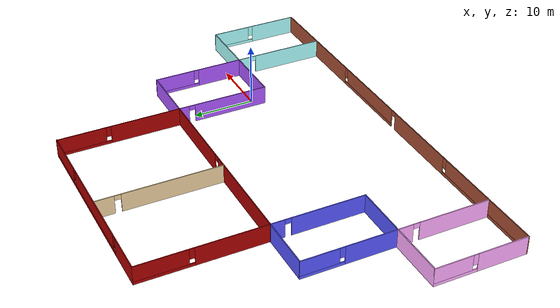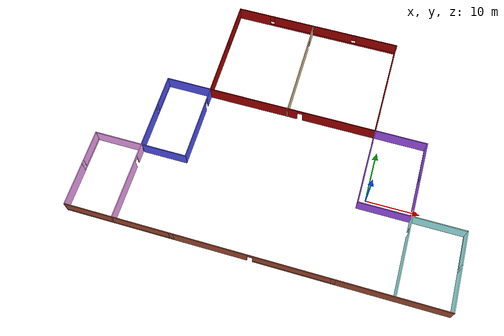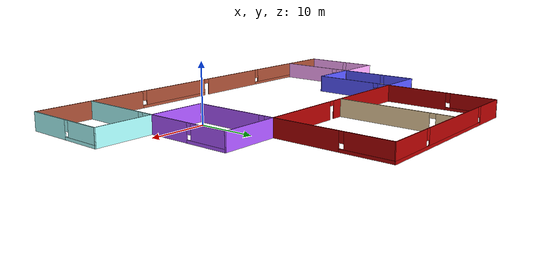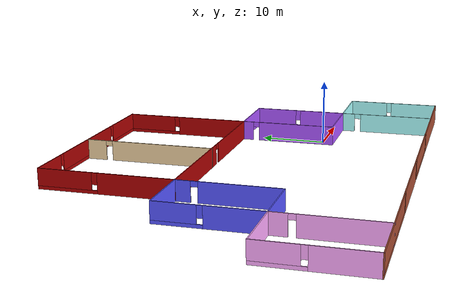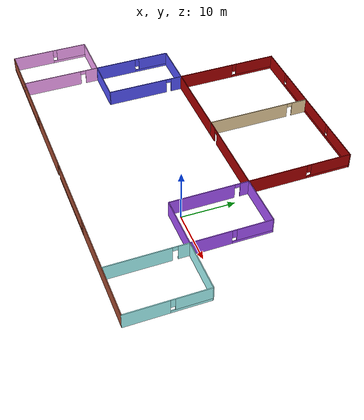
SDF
<?xml version='1.0'?>
<sdf version='1.6'>
  <model name='myworld'>
    <pose frame=''>-16.567 8.19 0 0 -0 0</pose>
    <link name='Wall_13'>
      <pose frame=''>1e-06 -24.775 0 0 -0 3.14159</pose>
      <visual name='Wall_13_Visual_0'>
        <pose frame=''>-24.8847 0 1.5 0 -0 0</pose>
        <geometry>
          <box>
            <size>20.2306 0.15 3</size>
          </box>
        </geometry>
        <material>
          <script>
            <uri>file://media/materials/scripts/gazebo.material</uri>
            <name>Gazebo/Bricks</name>
          </script>
          <ambient>1 1 1 1</ambient>
        </material>
        <meta>
          <layer>0</layer>
        </meta>
      </visual>
      <collision name='Wall_13_Collision_0'>
        <geometry>
          <box>
            <size>20.2306 0.15 3</size>
          </box>
        </geometry>
        <pose frame=''>-24.8847 0 1.5 0 -0 0</pose>
      </collision>
      <visual name='Wall_13_Visual_1'>
        <pose frame=''>7.72446 0 1.5 0 -0 0</pose>
        <geometry>
          <box>
            <size>13.4735 0.15 3</size>
          </box>
        </geometry>
        <material>
          <script>
            <uri>file://media/materials/scripts/gazebo.material</uri>
            <name>Gazebo/Bricks</name>
          </script>
          <ambient>1 1 1 1</ambient>
        </material>
        <meta>
          <layer>0</layer>
        </meta>
      </visual>
      <collision name='Wall_13_Collision_1'>
        <geometry>
          <box>
            <size>13.4735 0.15 3</size>
          </box>
        </geometry>
        <pose frame=''>7.72446 0 1.5 0 -0 0</pose>
      </collision>
      <visual name='Wall_13_Visual_2'>
        <pose frame=''>-7.39085 0 0.25 0 -0 0</pose>
        <geometry>
          <box>
            <size>14.7571 0.15 0.5</size>
          </box>
        </geometry>
        <material>
          <script>
            <uri>file://media/materials/scripts/gazebo.material</uri>
            <name>Gazebo/Bricks</name>
          </script>
          <ambient>1 1 1 1</ambient>
        </material>
        <meta>
          <layer>0</layer>
        </meta>
      </visual>
      <collision name='Wall_13_Collision_2'>
        <geometry>
          <box>
            <size>14.7571 0.15 0.5</size>
          </box>
        </geometry>
        <pose frame=''>-7.39085 0 0.25 0 -0 0</pose>
      </collision>
      <visual name='Wall_13_Visual_3'>
        <pose frame=''>24.7306 0 0.25 0 -0 0</pose>
        <geometry>
          <box>
            <size>20.5388 0.15 0.5</size>
          </box>
        </geometry>
        <material>
          <script>
            <uri>file://media/materials/scripts/gazebo.material</uri>
            <name>Gazebo/Bricks</name>
          </script>
          <ambient>1 1 1 1</ambient>
        </material>
        <meta>
          <layer>0</layer>
        </meta>
      </visual>
      <collision name='Wall_13_Collision_3'>
        <geometry>
          <box>
            <size>20.5388 0.15 0.5</size>
          </box>
        </geometry>
        <pose frame=''>24.7306 0 0.25 0 -0 0</pose>
      </collision>
      <visual name='Wall_13_Visual_5'>
        <pose frame=''>-6.99085 0 1.75 0 -0 0</pose>
        <geometry>
          <box>
            <size>13.9571 0.15 2.5</size>
          </box>
        </geometry>
        <material>
          <script>
            <uri>file://media/materials/scripts/gazebo.material</uri>
            <name>Gazebo/Bricks</name>
          </script>
          <ambient>1 1 1 1</ambient>
        </material>
        <meta>
          <layer>0</layer>
        </meta>
      </visual>
      <collision name='Wall_13_Collision_5'>
        <geometry>
          <box>
            <size>13.9571 0.15 2.5</size>
          </box>
        </geometry>
        <pose frame=''>-6.99085 0 1.75 0 -0 0</pose>
      </collision>
      <visual name='Wall_13_Visual_6'>
        <pose frame=''>-6.99085 0 1.75 0 -0 0</pose>
        <geometry>
          <box>
            <size>13.9571 0.15 2.5</size>
          </box>
        </geometry>
        <material>
          <script>
            <uri>file://media/materials/scripts/gazebo.material</uri>
            <name>Gazebo/Bricks</name>
          </script>
          <ambient>1 1 1 1</ambient>
        </material>
        <meta>
          <layer>0</layer>
        </meta>
      </visual>
      <collision name='Wall_13_Collision_6'>
        <geometry>
          <box>
            <size>13.9571 0.15 2.5</size>
          </box>
        </geometry>
        <pose frame=''>-6.99085 0 1.75 0 -0 0</pose>
      </collision>
      <visual name='Wall_13_Visual_7'>
        <pose frame=''>25.1306 0 1.75 0 -0 0</pose>
        <geometry>
          <box>
            <size>19.7388 0.15 2.5</size>
          </box>
        </geometry>
        <material>
          <script>
            <uri>file://media/materials/scripts/gazebo.material</uri>
            <name>Gazebo/Bricks</name>
          </script>
          <ambient>1 1 1 1</ambient>
        </material>
        <meta>
          <layer>0</layer>
        </meta>
      </visual>
      <collision name='Wall_13_Collision_7'>
        <geometry>
          <box>
            <size>19.7388 0.15 2.5</size>
          </box>
        </geometry>
        <pose frame=''>25.1306 0 1.75 0 -0 0</pose>
      </collision>
      <visual name='Wall_13_Visual_8'>
        <pose frame=''>-14.3694 0 2.15 0 -0 0</pose>
        <geometry>
          <box>
            <size>0.8 0.15 1.7</size>
          </box>
        </geometry>
        <material>
          <script>
            <uri>file://media/materials/scripts/gazebo.material</uri>
            <name>Gazebo/Bricks</name>
          </script>
          <ambient>1 1 1 1</ambient>
        </material>
        <meta>
          <layer>0</layer>
        </meta>
      </visual>
      <collision name='Wall_13_Collision_8'>
        <geometry>
          <box>
            <size>0.8 0.15 1.7</size>
          </box>
        </geometry>
        <pose frame=''>-14.3694 0 2.15 0 -0 0</pose>
      </collision>
      <visual name='Wall_13_Visual_9'>
        <pose frame=''>14.8612 0 2.15 0 -0 0</pose>
        <geometry>
          <box>
            <size>0.8 0.15 1.7</size>
          </box>
        </geometry>
        <material>
          <script>
            <uri>file://media/materials/scripts/gazebo.material</uri>
            <name>Gazebo/Bricks</name>
          </script>
          <ambient>1 1 1 1</ambient>
        </material>
        <meta>
          <layer>0</layer>
        </meta>
      </visual>
      <collision name='Wall_13_Collision_9'>
        <geometry>
          <box>
            <size>0.8 0.15 1.7</size>
          </box>
        </geometry>
        <pose frame=''>14.8612 0 2.15 0 -0 0</pose>
      </collision>
      <visual name='Wall_13_Visual_10'>
        <pose frame=''>0.487698 0 2.6 0 -0 0</pose>
        <geometry>
          <box>
            <size>1 0.15 0.8</size>
          </box>
        </geometry>
        <material>
          <script>
            <uri>file://media/materials/scripts/gazebo.material</uri>
            <name>Gazebo/Bricks</name>
          </script>
          <ambient>1 1 1 1</ambient>
        </material>
        <meta>
          <layer>0</layer>
        </meta>
      </visual>
      <collision name='Wall_13_Collision_10'>
        <geometry>
          <box>
            <size>1 0.15 0.8</size>
          </box>
        </geometry>
        <pose frame=''>0.487698 0 2.6 0 -0 0</pose>
      </collision>
      <visual name='Wall_13_Visual_11'>
        <pose frame=''>0.487698 0 2.6 0 -0 0</pose>
        <geometry>
          <box>
            <size>1 0.15 0.8</size>
          </box>
        </geometry>
        <material>
          <script>
            <uri>file://media/materials/scripts/gazebo.material</uri>
            <name>Gazebo/Bricks</name>
          </script>
          <ambient>1 1 1 1</ambient>
        </material>
        <meta>
          <layer>0</layer>
        </meta>
      </visual>
      <collision name='Wall_13_Collision_11'>
        <geometry>
          <box>
            <size>1 0.15 0.8</size>
          </box>
        </geometry>
        <pose frame=''>0.487698 0 2.6 0 -0 0</pose>
      </collision>
    </link>
    <link name='Wall_14'>
      <pose frame=''>-34.925 -17.35 0 0 -0 1.5708</pose>
      <visual name='Wall_14_Visual_0'>
        <pose frame=''>-3.43526 0 1.5 0 -0 0</pose>
        <geometry>
          <box>
            <size>8.12947 0.15 3</size>
          </box>
        </geometry>
        <material>
          <script>
            <uri>file://media/materials/scripts/gazebo.material</uri>
            <name>Gazebo/Grey</name>
          </script>
          <ambient>1 0.666667 1 1</ambient>
        </material>
        <meta>
          <layer>0</layer>
        </meta>
      </visual>
      <collision name='Wall_14_Collision_0'>
        <geometry>
          <box>
            <size>8.12947 0.15 3</size>
          </box>
        </geometry>
        <pose frame=''>-3.43526 0 1.5 0 -0 0</pose>
      </collision>
      <visual name='Wall_14_Visual_1'>
        <pose frame=''>4.06474 0 0.25 0 -0 0</pose>
        <geometry>
          <box>
            <size>6.87052 0.15 0.5</size>
          </box>
        </geometry>
        <material>
          <script>
            <uri>file://media/materials/scripts/gazebo.material</uri>
            <name>Gazebo/Grey</name>
          </script>
          <ambient>1 0.666667 1 1</ambient>
        </material>
        <meta>
          <layer>0</layer>
        </meta>
      </visual>
      <collision name='Wall_14_Collision_1'>
        <geometry>
          <box>
            <size>6.87052 0.15 0.5</size>
          </box>
        </geometry>
        <pose frame=''>4.06474 0 0.25 0 -0 0</pose>
      </collision>
      <visual name='Wall_14_Visual_2'>
        <pose frame=''>4.46474 0 1.75 0 -0 0</pose>
        <geometry>
          <box>
            <size>6.07052 0.15 2.5</size>
          </box>
        </geometry>
        <material>
          <script>
            <uri>file://media/materials/scripts/gazebo.material</uri>
            <name>Gazebo/Grey</name>
          </script>
          <ambient>1 0.666667 1 1</ambient>
        </material>
        <meta>
          <layer>0</layer>
        </meta>
      </visual>
      <collision name='Wall_14_Collision_2'>
        <geometry>
          <box>
            <size>6.07052 0.15 2.5</size>
          </box>
        </geometry>
        <pose frame=''>4.46474 0 1.75 0 -0 0</pose>
      </collision>
      <visual name='Wall_14_Visual_3'>
        <pose frame=''>1.02947 0 2.15 0 -0 0</pose>
        <geometry>
          <box>
            <size>0.8 0.15 1.7</size>
          </box>
        </geometry>
        <material>
          <script>
            <uri>file://media/materials/scripts/gazebo.material</uri>
            <name>Gazebo/Grey</name>
          </script>
          <ambient>1 0.666667 1 1</ambient>
        </material>
        <meta>
          <layer>0</layer>
        </meta>
      </visual>
      <collision name='Wall_14_Collision_3'>
        <geometry>
          <box>
            <size>0.8 0.15 1.7</size>
          </box>
        </geometry>
        <pose frame=''>1.02947 0 2.15 0 -0 0</pose>
      </collision>
    </link>
    <link name='Wall_15'>
      <collision name='Wall_15_Collision'>
        <geometry>
          <box>
            <size>9.165 0.15 3</size>
          </box>
        </geometry>
        <pose frame=''>0 0 1.5 0 -0 0</pose>
      </collision>
      <visual name='Wall_15_Visual'>
        <pose frame=''>0 0 1.5 0 -0 0</pose>
        <geometry>
          <box>
            <size>9.165 0.15 3</size>
          </box>
        </geometry>
        <material>
          <script>
            <uri>file://media/materials/scripts/gazebo.material</uri>
            <name>Gazebo/Grey</name>
          </script>
          <ambient>1 0.666667 1 1</ambient>
        </material>
        <meta>
          <layer>0</layer>
        </meta>
      </visual>
      <pose frame=''>-30.4175 -9.925 0 0 -0 0</pose>
    </link>
    <link name='Wall_21'>
      <pose frame=''>-25.91 -2.5 0 0 -0 1.5708</pose>
      <visual name='Wall_21_Visual_0'>
        <pose frame=''>-3.41555 0 1.5 0 -0 0</pose>
        <geometry>
          <box>
            <size>8.16889 0.15 3</size>
          </box>
        </geometry>
        <material>
          <script>
            <uri>file://media/materials/scripts/gazebo.material</uri>
            <name>Gazebo/Grey</name>
          </script>
          <ambient>0.333333 0.333333 1 1</ambient>
        </material>
        <meta>
          <layer>0</layer>
        </meta>
      </visual>
      <collision name='Wall_21_Collision_0'>
        <geometry>
          <box>
            <size>8.16889 0.15 3</size>
          </box>
        </geometry>
        <pose frame=''>-3.41555 0 1.5 0 -0 0</pose>
      </collision>
      <visual name='Wall_21_Visual_1'>
        <pose frame=''>4.08445 0 0.25 0 -0 0</pose>
        <geometry>
          <box>
            <size>6.83111 0.15 0.5</size>
          </box>
        </geometry>
        <material>
          <script>
            <uri>file://media/materials/scripts/gazebo.material</uri>
            <name>Gazebo/Grey</name>
          </script>
          <ambient>0.333333 0.333333 1 1</ambient>
        </material>
        <meta>
          <layer>0</layer>
        </meta>
      </visual>
      <collision name='Wall_21_Collision_1'>
        <geometry>
          <box>
            <size>6.83111 0.15 0.5</size>
          </box>
        </geometry>
        <pose frame=''>4.08445 0 0.25 0 -0 0</pose>
      </collision>
      <visual name='Wall_21_Visual_2'>
        <pose frame=''>4.48445 0 1.75 0 -0 0</pose>
        <geometry>
          <box>
            <size>6.03111 0.15 2.5</size>
          </box>
        </geometry>
        <material>
          <script>
            <uri>file://media/materials/scripts/gazebo.material</uri>
            <name>Gazebo/Grey</name>
          </script>
          <ambient>0.333333 0.333333 1 1</ambient>
        </material>
        <meta>
          <layer>0</layer>
        </meta>
      </visual>
      <collision name='Wall_21_Collision_2'>
        <geometry>
          <box>
            <size>6.03111 0.15 2.5</size>
          </box>
        </geometry>
        <pose frame=''>4.48445 0 1.75 0 -0 0</pose>
      </collision>
      <visual name='Wall_21_Visual_3'>
        <pose frame=''>1.06889 0 2.15 0 -0 0</pose>
        <geometry>
          <box>
            <size>0.8 0.15 1.7</size>
          </box>
        </geometry>
        <material>
          <script>
            <uri>file://media/materials/scripts/gazebo.material</uri>
            <name>Gazebo/Grey</name>
          </script>
          <ambient>0.333333 0.333333 1 1</ambient>
        </material>
        <meta>
          <layer>0</layer>
        </meta>
      </visual>
      <collision name='Wall_21_Collision_3'>
        <geometry>
          <box>
            <size>0.8 0.15 1.7</size>
          </box>
        </geometry>
        <pose frame=''>1.06889 0 2.15 0 -0 0</pose>
      </collision>
    </link>
    <link name='Wall_22'>
      <collision name='Wall_22_Collision'>
        <geometry>
          <box>
            <size>8.786 0.15 3</size>
          </box>
        </geometry>
        <pose frame=''>0 0 1.5 0 -0 0</pose>
      </collision>
      <visual name='Wall_22_Visual'>
        <pose frame=''>0 0 1.5 0 -0 0</pose>
        <geometry>
          <box>
            <size>8.786 0.15 3</size>
          </box>
        </geometry>
        <material>
          <script>
            <uri>file://media/materials/scripts/gazebo.material</uri>
            <name>Gazebo/Grey</name>
          </script>
          <ambient>0.333333 0.333333 1 1</ambient>
        </material>
        <meta>
          <layer>0</layer>
        </meta>
      </visual>
      <pose frame=''>-21.592 4.925 0 0 -0 0</pose>
    </link>
    <link name='Wall_24'>
      <pose frame=''>-17.274 14.85 0 0 -0 1.5708</pose>
      <visual name='Wall_24_Visual_0'>
        <pose frame=''>-4.4064 0 1.5 0 -0 0</pose>
        <geometry>
          <box>
            <size>11.1872 0.15 3</size>
          </box>
        </geometry>
        <material>
          <script>
            <uri>file://media/materials/scripts/gazebo.material</uri>
            <name>Gazebo/Grey</name>
          </script>
          <ambient>0.666667 0 0 1</ambient>
        </material>
        <meta>
          <layer>0</layer>
        </meta>
      </visual>
      <collision name='Wall_24_Collision_0'>
        <geometry>
          <box>
            <size>11.1872 0.15 3</size>
          </box>
        </geometry>
        <pose frame=''>-4.4064 0 1.5 0 -0 0</pose>
      </collision>
      <visual name='Wall_24_Visual_1'>
        <pose frame=''>5.5936 0 0.25 0 -0 0</pose>
        <geometry>
          <box>
            <size>8.8128 0.15 0.5</size>
          </box>
        </geometry>
        <material>
          <script>
            <uri>file://media/materials/scripts/gazebo.material</uri>
            <name>Gazebo/Grey</name>
          </script>
          <ambient>0.666667 0 0 1</ambient>
        </material>
        <meta>
          <layer>0</layer>
        </meta>
      </visual>
      <collision name='Wall_24_Collision_1'>
        <geometry>
          <box>
            <size>8.8128 0.15 0.5</size>
          </box>
        </geometry>
        <pose frame=''>5.5936 0 0.25 0 -0 0</pose>
      </collision>
      <visual name='Wall_24_Visual_2'>
        <pose frame=''>5.9936 0 1.75 0 -0 0</pose>
        <geometry>
          <box>
            <size>8.0128 0.15 2.5</size>
          </box>
        </geometry>
        <material>
          <script>
            <uri>file://media/materials/scripts/gazebo.material</uri>
            <name>Gazebo/Grey</name>
          </script>
          <ambient>0.666667 0 0 1</ambient>
        </material>
        <meta>
          <layer>0</layer>
        </meta>
      </visual>
      <collision name='Wall_24_Collision_2'>
        <geometry>
          <box>
            <size>8.0128 0.15 2.5</size>
          </box>
        </geometry>
        <pose frame=''>5.9936 0 1.75 0 -0 0</pose>
      </collision>
      <visual name='Wall_24_Visual_3'>
        <pose frame=''>1.5872 0 2.15 0 -0 0</pose>
        <geometry>
          <box>
            <size>0.8 0.15 1.7</size>
          </box>
        </geometry>
        <material>
          <script>
            <uri>file://media/materials/scripts/gazebo.material</uri>
            <name>Gazebo/Grey</name>
          </script>
          <ambient>0.666667 0 0 1</ambient>
        </material>
        <meta>
          <layer>0</layer>
        </meta>
      </visual>
      <collision name='Wall_24_Collision_3'>
        <geometry>
          <box>
            <size>0.8 0.15 1.7</size>
          </box>
        </geometry>
        <pose frame=''>1.5872 0 2.15 0 -0 0</pose>
      </collision>
    </link>
    <link name='Wall_25'>
      <pose frame=''>-0.974 24.775 0 0 -0 0</pose>
      <visual name='Wall_25_Visual_0'>
        <pose frame=''>-13.0895 0 1.5 0 -0 0</pose>
        <geometry>
          <box>
            <size>6.57101 0.15 3</size>
          </box>
        </geometry>
        <material>
          <script>
            <uri>file://media/materials/scripts/gazebo.material</uri>
            <name>Gazebo/Grey</name>
          </script>
          <ambient>0.666667 0 0 1</ambient>
        </material>
        <meta>
          <layer>0</layer>
        </meta>
      </visual>
      <collision name='Wall_25_Collision_0'>
        <geometry>
          <box>
            <size>6.57101 0.15 3</size>
          </box>
        </geometry>
        <pose frame=''>-13.0895 0 1.5 0 -0 0</pose>
      </collision>
      <visual name='Wall_25_Visual_1'>
        <pose frame=''>3.2855 0 0.25 0 -0 0</pose>
        <geometry>
          <box>
            <size>26.179 0.15 0.5</size>
          </box>
        </geometry>
        <material>
          <script>
            <uri>file://media/materials/scripts/gazebo.material</uri>
            <name>Gazebo/Grey</name>
          </script>
          <ambient>0.666667 0 0 1</ambient>
        </material>
        <meta>
          <layer>0</layer>
        </meta>
      </visual>
      <collision name='Wall_25_Collision_1'>
        <geometry>
          <box>
            <size>26.179 0.15 0.5</size>
          </box>
        </geometry>
        <pose frame=''>3.2855 0 0.25 0 -0 0</pose>
      </collision>
      <visual name='Wall_25_Visual_2'>
        <pose frame=''>-0.885868 0 1.75 0 -0 0</pose>
        <geometry>
          <box>
            <size>16.2363 0.15 2.5</size>
          </box>
        </geometry>
        <material>
          <script>
            <uri>file://media/materials/scripts/gazebo.material</uri>
            <name>Gazebo/Grey</name>
          </script>
          <ambient>0.666667 0 0 1</ambient>
        </material>
        <meta>
          <layer>0</layer>
        </meta>
      </visual>
      <collision name='Wall_25_Collision_2'>
        <geometry>
          <box>
            <size>16.2363 0.15 2.5</size>
          </box>
        </geometry>
        <pose frame=''>-0.885868 0 1.75 0 -0 0</pose>
      </collision>
      <visual name='Wall_25_Visual_3'>
        <pose frame=''>12.2036 0 1.75 0 -0 0</pose>
        <geometry>
          <box>
            <size>8.34274 0.15 2.5</size>
          </box>
        </geometry>
        <material>
          <script>
            <uri>file://media/materials/scripts/gazebo.material</uri>
            <name>Gazebo/Grey</name>
          </script>
          <ambient>0.666667 0 0 1</ambient>
        </material>
        <meta>
          <layer>0</layer>
        </meta>
      </visual>
      <collision name='Wall_25_Collision_3'>
        <geometry>
          <box>
            <size>8.34274 0.15 2.5</size>
          </box>
        </geometry>
        <pose frame=''>12.2036 0 1.75 0 -0 0</pose>
      </collision>
      <visual name='Wall_25_Visual_4'>
        <pose frame=''>-9.40399 0 2.15 0 -0 0</pose>
        <geometry>
          <box>
            <size>0.8 0.15 1.7</size>
          </box>
        </geometry>
        <material>
          <script>
            <uri>file://media/materials/scripts/gazebo.material</uri>
            <name>Gazebo/Grey</name>
          </script>
          <ambient>0.666667 0 0 1</ambient>
        </material>
        <meta>
          <layer>0</layer>
        </meta>
      </visual>
      <collision name='Wall_25_Collision_4'>
        <geometry>
          <box>
            <size>0.8 0.15 1.7</size>
          </box>
        </geometry>
        <pose frame=''>-9.40399 0 2.15 0 -0 0</pose>
      </collision>
      <visual name='Wall_25_Visual_5'>
        <pose frame=''>7.63226 0 2.15 0 -0 0</pose>
        <geometry>
          <box>
            <size>0.8 0.15 1.7</size>
          </box>
        </geometry>
        <material>
          <script>
            <uri>file://media/materials/scripts/gazebo.material</uri>
            <name>Gazebo/Grey</name>
          </script>
          <ambient>0.666667 0 0 1</ambient>
        </material>
        <meta>
          <layer>0</layer>
        </meta>
      </visual>
      <collision name='Wall_25_Collision_5'>
        <geometry>
          <box>
            <size>0.8 0.15 1.7</size>
          </box>
        </geometry>
        <pose frame=''>7.63226 0 2.15 0 -0 0</pose>
      </collision>
    </link>
    <link name='Wall_27'>
      <pose frame=''>34.925 -17.35 0 0 -0 1.5708</pose>
      <visual name='Wall_27_Visual_0'>
        <pose frame=''>-3.569 0 1.5 0 -0 0</pose>
        <geometry>
          <box>
            <size>7.862 0.15 3</size>
          </box>
        </geometry>
        <material>
          <script>
            <uri>file://media/materials/scripts/gazebo.material</uri>
            <name>Gazebo/Grey</name>
          </script>
          <ambient>0.666667 1 1 1</ambient>
        </material>
        <meta>
          <layer>0</layer>
        </meta>
      </visual>
      <collision name='Wall_27_Collision_0'>
        <geometry>
          <box>
            <size>7.862 0.15 3</size>
          </box>
        </geometry>
        <pose frame=''>-3.569 0 1.5 0 -0 0</pose>
      </collision>
      <visual name='Wall_27_Visual_1'>
        <pose frame=''>3.931 0 0.25 0 -0 0</pose>
        <geometry>
          <box>
            <size>7.138 0.15 0.5</size>
          </box>
        </geometry>
        <material>
          <script>
            <uri>file://media/materials/scripts/gazebo.material</uri>
            <name>Gazebo/Grey</name>
          </script>
          <ambient>0.666667 1 1 1</ambient>
        </material>
        <meta>
          <layer>0</layer>
        </meta>
      </visual>
      <collision name='Wall_27_Collision_1'>
        <geometry>
          <box>
            <size>7.138 0.15 0.5</size>
          </box>
        </geometry>
        <pose frame=''>3.931 0 0.25 0 -0 0</pose>
      </collision>
      <visual name='Wall_27_Visual_2'>
        <pose frame=''>4.331 0 1.75 0 -0 0</pose>
        <geometry>
          <box>
            <size>6.338 0.15 2.5</size>
          </box>
        </geometry>
        <material>
          <script>
            <uri>file://media/materials/scripts/gazebo.material</uri>
            <name>Gazebo/Grey</name>
          </script>
          <ambient>0.666667 1 1 1</ambient>
        </material>
        <meta>
          <layer>0</layer>
        </meta>
      </visual>
      <collision name='Wall_27_Collision_2'>
        <geometry>
          <box>
            <size>6.338 0.15 2.5</size>
          </box>
        </geometry>
        <pose frame=''>4.331 0 1.75 0 -0 0</pose>
      </collision>
      <visual name='Wall_27_Visual_3'>
        <pose frame=''>0.762001 0 2.15 0 -0 0</pose>
        <geometry>
          <box>
            <size>0.8 0.15 1.7</size>
          </box>
        </geometry>
        <material>
          <script>
            <uri>file://media/materials/scripts/gazebo.material</uri>
            <name>Gazebo/Grey</name>
          </script>
          <ambient>0.666667 1 1 1</ambient>
        </material>
        <meta>
          <layer>0</layer>
        </meta>
      </visual>
      <collision name='Wall_27_Collision_3'>
        <geometry>
          <box>
            <size>0.8 0.15 1.7</size>
          </box>
        </geometry>
        <pose frame=''>0.762001 0 2.15 0 -0 0</pose>
      </collision>
    </link>
    <link name='Wall_28'>
      <collision name='Wall_28_Collision'>
        <geometry>
          <box>
            <size>9.997 0.15 3</size>
          </box>
        </geometry>
        <pose frame=''>0 0 1.5 0 -0 0</pose>
      </collision>
      <visual name='Wall_28_Visual'>
        <pose frame=''>0 0 1.5 0 -0 0</pose>
        <geometry>
          <box>
            <size>9.997 0.15 3</size>
          </box>
        </geometry>
        <material>
          <script>
            <uri>file://media/materials/scripts/gazebo.material</uri>
            <name>Gazebo/Grey</name>
          </script>
          <ambient>0.666667 1 1 1</ambient>
        </material>
        <meta>
          <layer>0</layer>
        </meta>
      </visual>
      <pose frame=''>30.0015 -9.925 0 0 -0 3.14159</pose>
    </link>
    <link name='Wall_31'>
      <pose frame=''>25.078 -2.5 0 0 -0 1.5708</pose>
      <visual name='Wall_31_Visual_0'>
        <pose frame=''>-3.72761 0 1.5 0 -0 0</pose>
        <geometry>
          <box>
            <size>7.54479 0.15 3</size>
          </box>
        </geometry>
        <material>
          <script>
            <uri>file://media/materials/scripts/gazebo.material</uri>
            <name>Gazebo/Grey</name>
          </script>
          <ambient>0.666667 0.333333 1 1</ambient>
        </material>
        <meta>
          <layer>0</layer>
        </meta>
      </visual>
      <collision name='Wall_31_Collision_0'>
        <geometry>
          <box>
            <size>7.54479 0.15 3</size>
          </box>
        </geometry>
        <pose frame=''>-3.72761 0 1.5 0 -0 0</pose>
      </collision>
      <visual name='Wall_31_Visual_1'>
        <pose frame=''>3.77239 0 0.25 0 -0 0</pose>
        <geometry>
          <box>
            <size>7.45521 0.15 0.5</size>
          </box>
        </geometry>
        <material>
          <script>
            <uri>file://media/materials/scripts/gazebo.material</uri>
            <name>Gazebo/Grey</name>
          </script>
          <ambient>0.666667 0.333333 1 1</ambient>
        </material>
        <meta>
          <layer>0</layer>
        </meta>
      </visual>
      <collision name='Wall_31_Collision_1'>
        <geometry>
          <box>
            <size>7.45521 0.15 0.5</size>
          </box>
        </geometry>
        <pose frame=''>3.77239 0 0.25 0 -0 0</pose>
      </collision>
      <visual name='Wall_31_Visual_2'>
        <pose frame=''>4.17239 0 1.75 0 -0 0</pose>
        <geometry>
          <box>
            <size>6.65521 0.15 2.5</size>
          </box>
        </geometry>
        <material>
          <script>
            <uri>file://media/materials/scripts/gazebo.material</uri>
            <name>Gazebo/Grey</name>
          </script>
          <ambient>0.666667 0.333333 1 1</ambient>
        </material>
        <meta>
          <layer>0</layer>
        </meta>
      </visual>
      <collision name='Wall_31_Collision_2'>
        <geometry>
          <box>
            <size>6.65521 0.15 2.5</size>
          </box>
        </geometry>
        <pose frame=''>4.17239 0 1.75 0 -0 0</pose>
      </collision>
      <visual name='Wall_31_Visual_3'>
        <pose frame=''>0.444787 0 2.15 0 -0 0</pose>
        <geometry>
          <box>
            <size>0.8 0.15 1.7</size>
          </box>
        </geometry>
        <material>
          <script>
            <uri>file://media/materials/scripts/gazebo.material</uri>
            <name>Gazebo/Grey</name>
          </script>
          <ambient>0.666667 0.333333 1 1</ambient>
        </material>
        <meta>
          <layer>0</layer>
        </meta>
      </visual>
      <collision name='Wall_31_Collision_3'>
        <geometry>
          <box>
            <size>0.8 0.15 1.7</size>
          </box>
        </geometry>
        <pose frame=''>0.444787 0 2.15 0 -0 0</pose>
      </collision>
    </link>
    <link name='Wall_32'>
      <collision name='Wall_32_Collision'>
        <geometry>
          <box>
            <size>9.987 0.15 3</size>
          </box>
        </geometry>
        <pose frame=''>0 0 1.5 0 -0 0</pose>
      </collision>
      <visual name='Wall_32_Visual'>
        <pose frame=''>0 0 1.5 0 -0 0</pose>
        <geometry>
          <box>
            <size>9.987 0.15 3</size>
          </box>
        </geometry>
        <material>
          <script>
            <uri>file://media/materials/scripts/gazebo.material</uri>
            <name>Gazebo/Grey</name>
          </script>
          <ambient>0.666667 0.333333 1 1</ambient>
        </material>
        <meta>
          <layer>0</layer>
        </meta>
      </visual>
      <pose frame=''>20.1595 4.925 0 0 -0 3.14159</pose>
    </link>
    <link name='Wall_34'>
      <pose frame=''>15.241 14.849 0 0 -0 1.5708</pose>
      <visual name='Wall_34_Visual_0'>
        <pose frame=''>-4.30287 0 1.5 0 -0 0</pose>
        <geometry>
          <box>
            <size>11.3923 0.15 3</size>
          </box>
        </geometry>
        <material>
          <script>
            <uri>file://media/materials/scripts/gazebo.material</uri>
            <name>Gazebo/Grey</name>
          </script>
          <ambient>0.666667 0 0 1</ambient>
        </material>
        <meta>
          <layer>0</layer>
        </meta>
      </visual>
      <collision name='Wall_34_Collision_0'>
        <geometry>
          <box>
            <size>11.3923 0.15 3</size>
          </box>
        </geometry>
        <pose frame=''>-4.30287 0 1.5 0 -0 0</pose>
      </collision>
      <visual name='Wall_34_Visual_1'>
        <pose frame=''>5.69613 0 0.25 0 -0 0</pose>
        <geometry>
          <box>
            <size>8.60573 0.15 0.5</size>
          </box>
        </geometry>
        <material>
          <script>
            <uri>file://media/materials/scripts/gazebo.material</uri>
            <name>Gazebo/Grey</name>
          </script>
          <ambient>0.666667 0 0 1</ambient>
        </material>
        <meta>
          <layer>0</layer>
        </meta>
      </visual>
      <collision name='Wall_34_Collision_1'>
        <geometry>
          <box>
            <size>8.60573 0.15 0.5</size>
          </box>
        </geometry>
        <pose frame=''>5.69613 0 0.25 0 -0 0</pose>
      </collision>
      <visual name='Wall_34_Visual_2'>
        <pose frame=''>6.09613 0 1.75 0 -0 0</pose>
        <geometry>
          <box>
            <size>7.80573 0.15 2.5</size>
          </box>
        </geometry>
        <material>
          <script>
            <uri>file://media/materials/scripts/gazebo.material</uri>
            <name>Gazebo/Grey</name>
          </script>
          <ambient>0.666667 0 0 1</ambient>
        </material>
        <meta>
          <layer>0</layer>
        </meta>
      </visual>
      <collision name='Wall_34_Collision_2'>
        <geometry>
          <box>
            <size>7.80573 0.15 2.5</size>
          </box>
        </geometry>
        <pose frame=''>6.09613 0 1.75 0 -0 0</pose>
      </collision>
      <visual name='Wall_34_Visual_3'>
        <pose frame=''>1.79327 0 2.15 0 -0 0</pose>
        <geometry>
          <box>
            <size>0.8 0.15 1.7</size>
          </box>
        </geometry>
        <material>
          <script>
            <uri>file://media/materials/scripts/gazebo.material</uri>
            <name>Gazebo/Grey</name>
          </script>
          <ambient>0.666667 0 0 1</ambient>
        </material>
        <meta>
          <layer>0</layer>
        </meta>
      </visual>
      <collision name='Wall_34_Collision_3'>
        <geometry>
          <box>
            <size>0.8 0.15 1.7</size>
          </box>
        </geometry>
        <pose frame=''>1.79327 0 2.15 0 -0 0</pose>
      </collision>
    </link>
    <link name='Wall_37'>
      <pose frame=''>-25.91 -17.35 0 0 0 -1.5708</pose>
      <visual name='Wall_37_Visual_0'>
        <pose frame=''>-6.24162 0 1.5 0 -0 0</pose>
        <geometry>
          <box>
            <size>2.51676 0.15 3</size>
          </box>
        </geometry>
        <material>
          <script>
            <uri>file://media/materials/scripts/gazebo.material</uri>
            <name>Gazebo/Grey</name>
          </script>
          <ambient>1 0.666667 1 1</ambient>
        </material>
        <meta>
          <layer>0</layer>
        </meta>
      </visual>
      <collision name='Wall_37_Collision_0'>
        <geometry>
          <box>
            <size>2.51676 0.15 3</size>
          </box>
        </geometry>
        <pose frame=''>-6.24162 0 1.5 0 -0 0</pose>
      </collision>
      <visual name='Wall_37_Visual_1'>
        <pose frame=''>1.75838 0 1.5 0 -0 0</pose>
        <geometry>
          <box>
            <size>11.4832 0.15 3</size>
          </box>
        </geometry>
        <material>
          <script>
            <uri>file://media/materials/scripts/gazebo.material</uri>
            <name>Gazebo/Grey</name>
          </script>
          <ambient>1 0.666667 1 1</ambient>
        </material>
        <meta>
          <layer>0</layer>
        </meta>
      </visual>
      <collision name='Wall_37_Collision_1'>
        <geometry>
          <box>
            <size>11.4832 0.15 3</size>
          </box>
        </geometry>
        <pose frame=''>1.75838 0 1.5 0 -0 0</pose>
      </collision>
      <visual name='Wall_37_Visual_3'>
        <pose frame=''>-4.48324 0 2.6 0 -0 0</pose>
        <geometry>
          <box>
            <size>1 0.15 0.8</size>
          </box>
        </geometry>
        <material>
          <script>
            <uri>file://media/materials/scripts/gazebo.material</uri>
            <name>Gazebo/Grey</name>
          </script>
          <ambient>1 0.666667 1 1</ambient>
        </material>
        <meta>
          <layer>0</layer>
        </meta>
      </visual>
      <collision name='Wall_37_Collision_3'>
        <geometry>
          <box>
            <size>1 0.15 0.8</size>
          </box>
        </geometry>
        <pose frame=''>-4.48324 0 2.6 0 -0 0</pose>
      </collision>
    </link>
    <link name='Wall_40'>
      <pose frame=''>-17.274 -2.5 0 0 0 -1.5708</pose>
      <visual name='Wall_40_Visual_0'>
        <pose frame=''>-6.38157 0 1.5 0 -0 0</pose>
        <geometry>
          <box>
            <size>2.23685 0.15 3</size>
          </box>
        </geometry>
        <material>
          <script>
            <uri>file://media/materials/scripts/gazebo.material</uri>
            <name>Gazebo/Grey</name>
          </script>
          <ambient>0.333333 0.333333 1 1</ambient>
        </material>
        <meta>
          <layer>0</layer>
        </meta>
      </visual>
      <collision name='Wall_40_Collision_0'>
        <geometry>
          <box>
            <size>2.23685 0.15 3</size>
          </box>
        </geometry>
        <pose frame=''>-6.38157 0 1.5 0 -0 0</pose>
      </collision>
      <visual name='Wall_40_Visual_1'>
        <pose frame=''>1.61843 0 1.5 0 -0 0</pose>
        <geometry>
          <box>
            <size>11.7631 0.15 3</size>
          </box>
        </geometry>
        <material>
          <script>
            <uri>file://media/materials/scripts/gazebo.material</uri>
            <name>Gazebo/Grey</name>
          </script>
          <ambient>0.333333 0.333333 1 1</ambient>
        </material>
        <meta>
          <layer>0</layer>
        </meta>
      </visual>
      <collision name='Wall_40_Collision_1'>
        <geometry>
          <box>
            <size>11.7631 0.15 3</size>
          </box>
        </geometry>
        <pose frame=''>1.61843 0 1.5 0 -0 0</pose>
      </collision>
      <visual name='Wall_40_Visual_3'>
        <pose frame=''>-4.76315 0 2.6 0 -0 0</pose>
        <geometry>
          <box>
            <size>1 0.15 0.8</size>
          </box>
        </geometry>
        <material>
          <script>
            <uri>file://media/materials/scripts/gazebo.material</uri>
            <name>Gazebo/Grey</name>
          </script>
          <ambient>0.333333 0.333333 1 1</ambient>
        </material>
        <meta>
          <layer>0</layer>
        </meta>
      </visual>
      <collision name='Wall_40_Collision_3'>
        <geometry>
          <box>
            <size>1 0.15 0.8</size>
          </box>
        </geometry>
        <pose frame=''>-4.76315 0 2.6 0 -0 0</pose>
      </collision>
    </link>
    <link name='Wall_41'>
      <collision name='Wall_41_Collision'>
        <geometry>
          <box>
            <size>8.5 0.15 3</size>
          </box>
        </geometry>
        <pose frame=''>0 0 1.5 0 -0 0</pose>
      </collision>
      <visual name='Wall_41_Visual'>
        <pose frame=''>0 0 1.5 0 -0 0</pose>
        <geometry>
          <box>
            <size>8.5 0.15 3</size>
          </box>
        </geometry>
        <material>
          <script>
            <uri>file://media/materials/scripts/gazebo.material</uri>
            <name>Gazebo/Grey</name>
          </script>
          <ambient>0.333333 0.333333 1 1</ambient>
        </material>
        <meta>
          <layer>0</layer>
        </meta>
      </visual>
      <pose frame=''>-21.449 -9.925 0 0 -0 3.14159</pose>
    </link>
    <link name='Wall_43'>
      <pose frame=''>-1.059 4.925 0 0 -0 0</pose>
      <visual name='Wall_43_Visual_0'>
        <pose frame=''>-7.58275 0 1.5 0 -0 0</pose>
        <geometry>
          <box>
            <size>17.5845 0.15 3</size>
          </box>
        </geometry>
        <material>
          <script>
            <uri>file://media/materials/scripts/gazebo.material</uri>
            <name>Gazebo/Grey</name>
          </script>
          <ambient>0.666667 0 0 1</ambient>
        </material>
        <meta>
          <layer>0</layer>
        </meta>
      </visual>
      <collision name='Wall_43_Collision_0'>
        <geometry>
          <box>
            <size>17.5845 0.15 3</size>
          </box>
        </geometry>
        <pose frame=''>-7.58275 0 1.5 0 -0 0</pose>
      </collision>
      <visual name='Wall_43_Visual_1'>
        <pose frame=''>9.29224 0 1.5 0 -0 0</pose>
        <geometry>
          <box>
            <size>14.1655 0.15 3</size>
          </box>
        </geometry>
        <material>
          <script>
            <uri>file://media/materials/scripts/gazebo.material</uri>
            <name>Gazebo/Grey</name>
          </script>
          <ambient>0.666667 0 0 1</ambient>
        </material>
        <meta>
          <layer>0</layer>
        </meta>
      </visual>
      <collision name='Wall_43_Collision_1'>
        <geometry>
          <box>
            <size>14.1655 0.15 3</size>
          </box>
        </geometry>
        <pose frame=''>9.29224 0 1.5 0 -0 0</pose>
      </collision>
      <visual name='Wall_43_Visual_3'>
        <pose frame=''>1.70949 0 2.6 0 -0 0</pose>
        <geometry>
          <box>
            <size>1 0.15 0.8</size>
          </box>
        </geometry>
        <material>
          <script>
            <uri>file://media/materials/scripts/gazebo.material</uri>
            <name>Gazebo/Grey</name>
          </script>
          <ambient>0.666667 0 0 1</ambient>
        </material>
        <meta>
          <layer>0</layer>
        </meta>
      </visual>
      <collision name='Wall_43_Collision_3'>
        <geometry>
          <box>
            <size>1 0.15 0.8</size>
          </box>
        </geometry>
        <pose frame=''>1.70949 0 2.6 0 -0 0</pose>
      </collision>
    </link>
    <link name='Wall_47'>
      <pose frame=''>-1.828 14.819 0 0 0 -1.5708</pose>
      <visual name='Wall_47_Visual_0'>
        <pose frame=''>-8.46017 0 1.5 0 -0 0</pose>
        <geometry>
          <box>
            <size>3.07967 0.15 3</size>
          </box>
        </geometry>
        <material>
          <script>
            <uri>file://media/materials/scripts/gazebo.material</uri>
            <name>Gazebo/Grey</name>
          </script>
          <ambient>0.921569 0.807843 0.615686 1</ambient>
        </material>
        <meta>
          <layer>0</layer>
        </meta>
      </visual>
      <collision name='Wall_47_Collision_0'>
        <geometry>
          <box>
            <size>3.07967 0.15 3</size>
          </box>
        </geometry>
        <pose frame=''>-8.46017 0 1.5 0 -0 0</pose>
      </collision>
      <visual name='Wall_47_Visual_1'>
        <pose frame=''>2.03983 0 1.5 0 -0 0</pose>
        <geometry>
          <box>
            <size>15.9203 0.15 3</size>
          </box>
        </geometry>
        <material>
          <script>
            <uri>file://media/materials/scripts/gazebo.material</uri>
            <name>Gazebo/Grey</name>
          </script>
          <ambient>0.921569 0.807843 0.615686 1</ambient>
        </material>
        <meta>
          <layer>0</layer>
        </meta>
      </visual>
      <collision name='Wall_47_Collision_1'>
        <geometry>
          <box>
            <size>15.9203 0.15 3</size>
          </box>
        </geometry>
        <pose frame=''>2.03983 0 1.5 0 -0 0</pose>
      </collision>
      <visual name='Wall_47_Visual_3'>
        <pose frame=''>-6.42033 0 2.61 0 -0 0</pose>
        <geometry>
          <box>
            <size>1 0.15 0.78</size>
          </box>
        </geometry>
        <material>
          <script>
            <uri>file://media/materials/scripts/gazebo.material</uri>
            <name>Gazebo/Grey</name>
          </script>
          <ambient>0.921569 0.807843 0.615686 1</ambient>
        </material>
        <meta>
          <layer>0</layer>
        </meta>
      </visual>
      <collision name='Wall_47_Collision_3'>
        <geometry>
          <box>
            <size>1 0.15 0.78</size>
          </box>
        </geometry>
        <pose frame=''>-6.42033 0 2.61 0 -0 0</pose>
      </collision>
    </link>
    <link name='Wall_49'>
      <pose frame=''>25.078 -17.35 0 0 0 -1.5708</pose>
      <visual name='Wall_49_Visual_0'>
        <pose frame=''>-6.44514 0 1.5 0 -0 0</pose>
        <geometry>
          <box>
            <size>2.10971 0.15 3</size>
          </box>
        </geometry>
        <material>
          <script>
            <uri>file://media/materials/scripts/gazebo.material</uri>
            <name>Gazebo/Grey</name>
          </script>
          <ambient>0.666667 1 1 1</ambient>
        </material>
        <meta>
          <layer>0</layer>
        </meta>
      </visual>
      <collision name='Wall_49_Collision_0'>
        <geometry>
          <box>
            <size>2.10971 0.15 3</size>
          </box>
        </geometry>
        <pose frame=''>-6.44514 0 1.5 0 -0 0</pose>
      </collision>
      <visual name='Wall_49_Visual_1'>
        <pose frame=''>1.55486 0 1.5 0 -0 0</pose>
        <geometry>
          <box>
            <size>11.8903 0.15 3</size>
          </box>
        </geometry>
        <material>
          <script>
            <uri>file://media/materials/scripts/gazebo.material</uri>
            <name>Gazebo/Grey</name>
          </script>
          <ambient>0.666667 1 1 1</ambient>
        </material>
        <meta>
          <layer>0</layer>
        </meta>
      </visual>
      <collision name='Wall_49_Collision_1'>
        <geometry>
          <box>
            <size>11.8903 0.15 3</size>
          </box>
        </geometry>
        <pose frame=''>1.55486 0 1.5 0 -0 0</pose>
      </collision>
      <visual name='Wall_49_Visual_3'>
        <pose frame=''>-4.89029 0 2.6 0 -0 0</pose>
        <geometry>
          <box>
            <size>1 0.15 0.8</size>
          </box>
        </geometry>
        <material>
          <script>
            <uri>file://media/materials/scripts/gazebo.material</uri>
            <name>Gazebo/Grey</name>
          </script>
          <ambient>0.666667 1 1 1</ambient>
        </material>
        <meta>
          <layer>0</layer>
        </meta>
      </visual>
      <collision name='Wall_49_Collision_3'>
        <geometry>
          <box>
            <size>1 0.15 0.8</size>
          </box>
        </geometry>
        <pose frame=''>-4.89029 0 2.6 0 -0 0</pose>
      </collision>
    </link>
    <link name='Wall_51'>
      <pose frame=''>15.241 -2.5 0 0 0 -1.5708</pose>
      <visual name='Wall_51_Visual_0'>
        <pose frame=''>-6.63801 0 1.5 0 -0 0</pose>
        <geometry>
          <box>
            <size>1.72398 0.15 3</size>
          </box>
        </geometry>
        <material>
          <script>
            <uri>file://media/materials/scripts/gazebo.material</uri>
            <name>Gazebo/Grey</name>
          </script>
          <ambient>0.666667 0.333333 1 1</ambient>
        </material>
        <meta>
          <layer>0</layer>
        </meta>
      </visual>
      <collision name='Wall_51_Collision_0'>
        <geometry>
          <box>
            <size>1.72398 0.15 3</size>
          </box>
        </geometry>
        <pose frame=''>-6.63801 0 1.5 0 -0 0</pose>
      </collision>
      <visual name='Wall_51_Visual_1'>
        <pose frame=''>1.36199 0 1.5 0 -0 0</pose>
        <geometry>
          <box>
            <size>12.276 0.15 3</size>
          </box>
        </geometry>
        <material>
          <script>
            <uri>file://media/materials/scripts/gazebo.material</uri>
            <name>Gazebo/Grey</name>
          </script>
          <ambient>0.666667 0.333333 1 1</ambient>
        </material>
        <meta>
          <layer>0</layer>
        </meta>
      </visual>
      <collision name='Wall_51_Collision_1'>
        <geometry>
          <box>
            <size>12.276 0.15 3</size>
          </box>
        </geometry>
        <pose frame=''>1.36199 0 1.5 0 -0 0</pose>
      </collision>
      <visual name='Wall_51_Visual_3'>
        <pose frame=''>-5.27602 0 2.6 0 -0 0</pose>
        <geometry>
          <box>
            <size>1 0.15 0.8</size>
          </box>
        </geometry>
        <material>
          <script>
            <uri>file://media/materials/scripts/gazebo.material</uri>
            <name>Gazebo/Grey</name>
          </script>
          <ambient>0.666667 0.333333 1 1</ambient>
        </material>
        <meta>
          <layer>0</layer>
        </meta>
      </visual>
      <collision name='Wall_51_Collision_3'>
        <geometry>
          <box>
            <size>1 0.15 0.8</size>
          </box>
        </geometry>
        <pose frame=''>-5.27602 0 2.6 0 -0 0</pose>
      </collision>
    </link>
    <link name='Wall_52'>
      <collision name='Wall_52_Collision'>
        <geometry>
          <box>
            <size>9.987 0.15 3</size>
          </box>
        </geometry>
        <pose frame=''>0 0 1.5 0 -0 0</pose>
      </collision>
      <visual name='Wall_52_Visual'>
        <pose frame=''>0 0 1.5 0 -0 0</pose>
        <geometry>
          <box>
            <size>9.987 0.15 3</size>
          </box>
        </geometry>
        <material>
          <script>
            <uri>file://media/materials/scripts/gazebo.material</uri>
            <name>Gazebo/Grey</name>
          </script>
          <ambient>0.666667 0.333333 1 1</ambient>
        </material>
        <meta>
          <layer>0</layer>
        </meta>
      </visual>
      <pose frame=''>20.1595 -9.925 0 0 -0 0</pose>
    </link>
    <static>1</static>
  </model>
</sdf>
